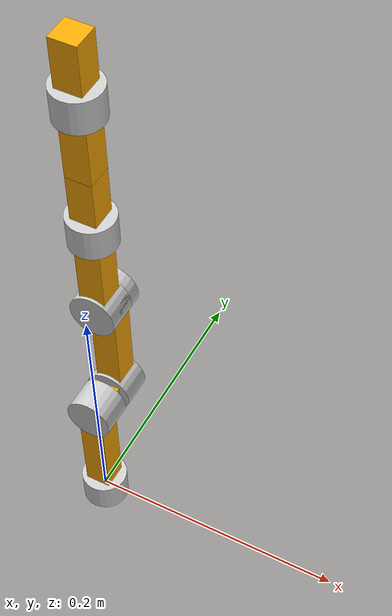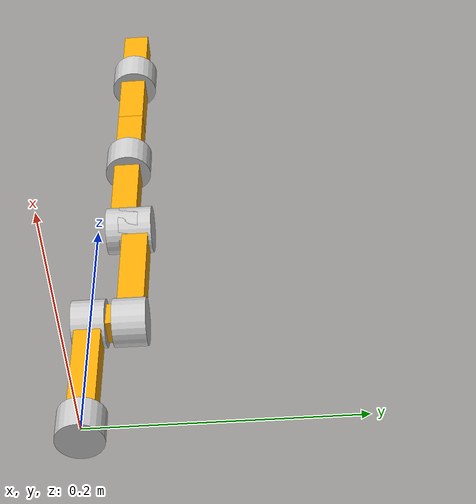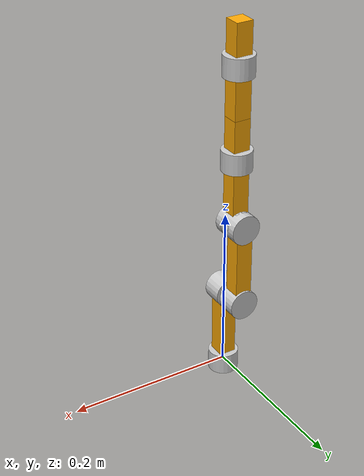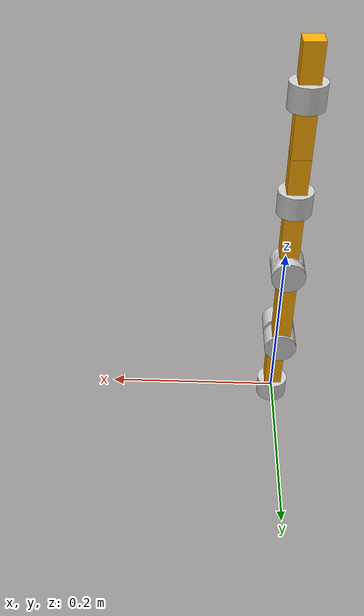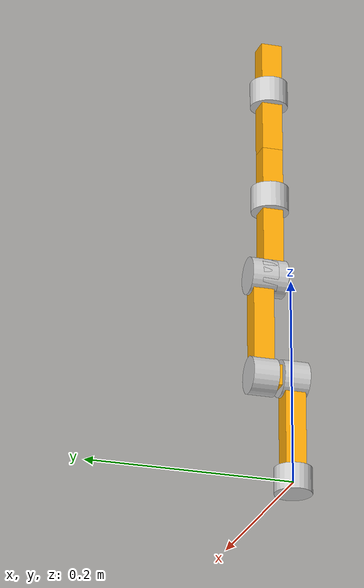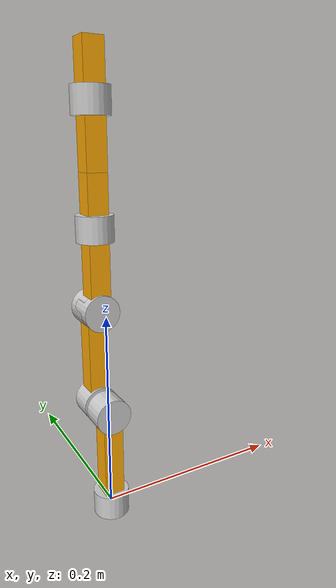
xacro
<?xml version="1.0"?>
<robot name="arm" xmlns:xacro="http://www.ros.org/wiki/xacro">

  <xacro:property name="PI" value="3.14159265359"/>

  <!-- Joints Control in Gazebo -->
  <gazebo>
    <plugin name="gazebo_ros_control" filename="libgazebo_ros_control.so"/>
  </gazebo>

  <!-- Geometrical properties -->
  <xacro:property name="link_side" value="0.02"/>
  <xacro:property name="joint_radius" value="0.018"/>
  <xacro:property name="joint_length" value="0.025"/>
  <xacro:property name="l0_length" value="0.001"/>
  <xacro:property name="l1_length" value="0.10"/>
  <xacro:property name="b2_length" value="0.03"/>
  <xacro:property name="l2_length" value="0.10"/>
  <xacro:property name="b3_length" value="0.02"/>
  <xacro:property name="l3_length" value="0.08"/>
  <xacro:property name="l4_length" value="0.05"/>
  <xacro:property name="l5_length" value="0.06"/>
  <xacro:property name="l6_length" value="0.05"/>

  <!-- Materials -->
  <material name="orange">
    <color rgba="1.00 0.67 0.02 1.00"/>
  </material>

  <material name="gray">
    <color rgba="0.80 0.80 0.80 1.00"/>
  </material>

  <!-- Generates a box visual/collision/inertial -->
  <xacro:macro name="prism_vci" params="side length mass:=1 *origin">

    <xacro:macro name="prism_geometry">
      <xacro:insert_block name="origin"/>
      <geometry>
        <box size="${side} ${side} ${length}"/>
      </geometry>
    </xacro:macro>

    <visual>
      <xacro:prism_geometry/>
      <material name="orange"/>
    </visual>

    <collision>
      <xacro:prism_geometry/>
    </collision>

    <inertial>
      <xacro:insert_block name="origin"/>
      <mass value="${mass}"/>
      <inertia ixx="${(mass/12)*(side*side+length*length)}"
               iyy="${(mass/12)*(side*side+length*length)}"
               izz="${(mass/6)*(side*side)}"
               ixy="0" ixz="0" iyz="0"/>
    </inertial>

  </xacro:macro>

  <!-- Generates a cylinder visual/collision -->
  <xacro:macro name="cylinder_vc" params="radius length *origin">

    <xacro:macro name="cylinder_geometry">
      <xacro:insert_block name="origin"/>
      <geometry>
        <cylinder length="${length}" radius="${radius}"/>
      </geometry>
    </xacro:macro>

    <visual>
      <xacro:cylinder_geometry/>
      <material name="gray"/>
    </visual>

    <collision>
      <xacro:cylinder_geometry/>
    </collision>

  </xacro:macro>

  <!-- Generates child joint of parent -->
  <xacro:macro name="arm_joint" params="child parent dist:=0 axis rpy">

    <joint name="${parent}_${child}_joint" type="revolute">
      <origin xyz="0 0 ${dist}" rpy="${rpy}"/>
      <parent link="${parent}"/>
      <child link="${child}"/>
      <axis xyz="${axis}"/>
      <limit effort="40.0"
             velocity="1.0"
             lower="${-PI}"
             upper="${PI}"/>
    </joint>

    <!-- Required for ROS control -->
    <transmission name="${parent}_${child}_transmission">
      <type>transmission_interface/SimpleTransmission</type>
      <joint name="${parent}_${child}_joint">
        <hardwareInterface>hardware_interface/EffortJointInterface</hardwareInterface>
      </joint>
      <actuator name="${parent}_${child}_actuator"/>
    </transmission>

    <link name="${parent}">

      <xacro:prism_vci length="${dist}" side="${link_side}">
        <origin xyz="0 0 ${dist/2}" rpy="0 0 0"/>
      </xacro:prism_vci>

      <xacro:cylinder_vc radius="${joint_radius}" length="${joint_length}">

        <xacro:if value="${axis=='0 0 1'}">
          <origin xyz="0 0 ${dist}" rpy="0 0 0"/>
        </xacro:if>

        <xacro:if value="${axis=='1 0 0'}">
          <origin xyz="0 0 ${dist}" rpy="0 ${PI/2} 0"/>
        </xacro:if>

        <xacro:if value="${axis=='0 1 0'}">
          <origin xyz="0 0 ${dist}" rpy="${PI/2} 0 0"/>
        </xacro:if>

      </xacro:cylinder_vc>

    </link>

    <gazebo reference="${parent}">
      <material>Gazebo/Orange</material>
    </gazebo>

  </xacro:macro>

  <!-- World frame (for Gazebo) -->
  <link name="world"/>

  <!-- Arm fixed to world frame  -->
  <joint name="world_l0_joint" type="fixed">
    <origin xyz="0 0 0" rpy="0 0 0"/>
    <parent link="world"/>
    <child link="l0"/>
  </joint>

  <!-- Joints Chain -->
  <xacro:arm_joint parent="l0" child="l1" axis="0 0 1" rpy="0 0 0" dist="${l0_length}"/>

  <joint name="l1_b2_joint" type="revolute">
      <origin xyz="0 0 ${l1_length}" rpy="${PI/2} 0 ${PI/2}"/>
      <parent link="l1"/>
      <child link="b2"/>
      <axis xyz="1 0 0"/>
      <limit effort="40.0"
             velocity="1.0"
             lower="${-PI}"
             upper="${PI}"/>
  </joint>

  <link name="l1">
    <xacro:prism_vci length="${l1_length}" side="${link_side}">
      <origin xyz="0 0 ${l1_length/2}" rpy="0 0 0"/>
    </xacro:prism_vci>
    <xacro:cylinder_vc radius="${joint_radius}" length="${joint_length}">
       <origin xyz="0 0 ${l1_length}" rpy="${PI/2} 0 0"/>
    </xacro:cylinder_vc>
  </link>

  <joint name="b2_l2_joint" type="fixed">
      <origin xyz="${b2_length} 0 0" rpy="0 0 0"/>
      <parent link="b2"/>
      <child link="l2"/>
      <axis xyz="0 0 1"/>
      <limit effort="40.0"
             velocity="1.0"
             lower="${-PI}"
             upper="${PI}"/>
  </joint>

  <link name="b2">
    <xacro:prism_vci length="${b2_length}" side="${link_side}">
      <origin xyz="${b2_length/2} 0 0" rpy="0 ${PI/2} 0"/>
    </xacro:prism_vci>
    <xacro:cylinder_vc radius="${joint_radius}" length="${joint_length}">
       <origin xyz="${b2_length} 0 0" rpy="0 ${PI/2} 0"/>
    </xacro:cylinder_vc>
  </link>

  <joint name="l2_b3_joint" type="revolute">
      <origin xyz="${b2_length} ${l2_length} 0" rpy="0 0 0"/>
      <parent link="l2"/>
      <child link="b3"/>
      <axis xyz="1 0 0"/>
      <limit effort="40.0"
             velocity="1.0"
             lower="${-PI}"
             upper="${PI}"/>
  </joint>

  <link name="l2">
    <xacro:prism_vci length="${l2_length}" side="${link_side}">
      <origin xyz="0 ${l2_length/2} 0" rpy="${PI/2} 0 0"/>
    </xacro:prism_vci>
    <xacro:cylinder_vc radius="${joint_radius}" length="${joint_length}">
       <origin xyz="0 ${l2_length} 0" rpy="0 ${PI/2} 0"/>
    </xacro:cylinder_vc>
  </link>

  <joint name="b3_l3_joint" type="fixed">
      <origin xyz="-${b3_length*2} 0 0" rpy="-${PI/2} 0 0"/>
      <parent link="b3"/>
      <child link="l3"/>
      <axis xyz="1 0 0"/>
      <limit effort="40.0"
             velocity="1.0"
             lower="${-PI}"
             upper="${PI}"/>
  </joint>

  <link name="b3">
    <xacro:prism_vci length="${b3_length}" side="${link_side}">
      <origin xyz="-${b3_length*1.5} 0 0" rpy="0 ${PI/2} 0"/>
    </xacro:prism_vci>
    <xacro:cylinder_vc radius="${joint_radius}" length="${joint_length}">
       <origin xyz="-${b3_length*2} 0 0" rpy="0 ${PI/2} 0"/>
    </xacro:cylinder_vc>
  </link>

  <xacro:arm_joint parent="l3" child="l4" axis="0 0 1" rpy="0 0 0" dist="${l3_length}"/>
  <xacro:arm_joint parent="l4" child="l5" axis="1 0 0" rpy="0 0 0" dist="${l4_length}"/>
  <xacro:arm_joint parent="l5" child="l6" axis="0 0 1" rpy="0 0 0" dist="${l5_length}"/>

  <!-- End effector -->
  <link name="l6">
    <xacro:prism_vci length="${l6_length}" side="${link_side}">
      <origin xyz="0 0 ${l6_length/2}" rpy="0 0 0"/>
    </xacro:prism_vci>
  </link>

  <gazebo reference="l6">
    <material>Gazebo/Green</material>
  </gazebo>

</robot>
